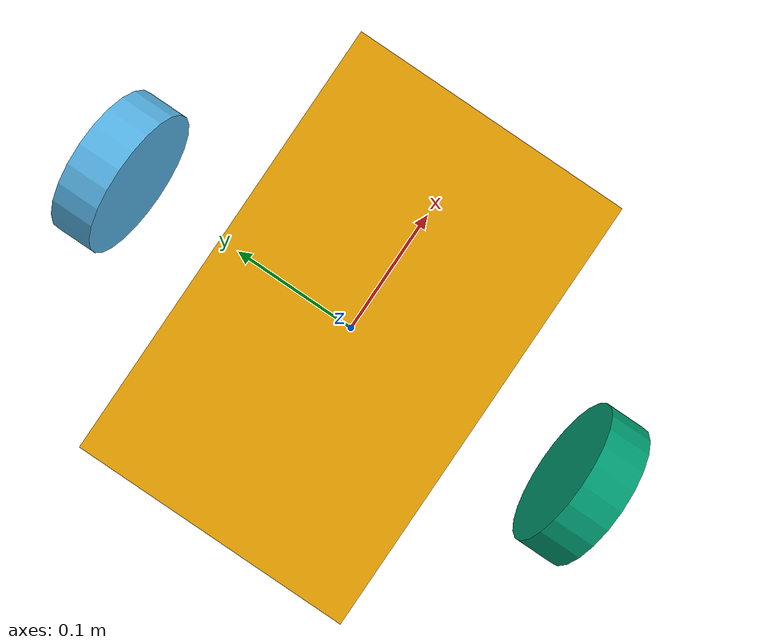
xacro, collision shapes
<?xml version="1.0"?>
<robot xmlns:xacro="http://www.ros.org/wiki/xacro" name="balance">
  <xacro:arg name="load_chassis" default="true"/>
  <xacro:arg name="load_gimbal" default="true"/>
  <xacro:arg name="load_shooter" default="true"/>
  <xacro:arg name="use_simulation" default="true"/>
  <xacro:arg name="use_rm_gazebo" default="false"/>

  <xacro:if value="$(arg load_chassis)">
    <xacro:include filename="$(find rm_description)/urdf/balance/chassis.urdf.xacro"/>
    <xacro:chassis/>
  </xacro:if>

  <xacro:if value="$(arg load_gimbal)">
  </xacro:if>

  <xacro:if value="$(arg load_shooter)">
  </xacro:if>

  <xacro:if value="$(arg use_simulation)">
    <xacro:if value="$(arg use_rm_gazebo)">
      <gazebo>
        <plugin name="rm_ros_control" filename="librm_robot_hw_sim.so">
          <robotNamespace>/</robotNamespace>
          <robotSimType>rm_gazebo/RmRobotHWSim</robotSimType>
        </plugin>
      </gazebo>
    </xacro:if>
    <xacro:unless value="$(arg use_rm_gazebo)">
      <gazebo>
        <plugin name="gazebo_ros_control" filename="libgazebo_ros_control.so">
          <robotNamespace>/</robotNamespace>
        </plugin>
      </gazebo>
    </xacro:unless>
    <xacro:if value="$(arg load_chassis)">
      <gazebo reference="base_link">
        <gravity>true</gravity>
        <sensor name="imu_sensor" type="imu">
          <always_on>true</always_on>
          <update_rate>100</update_rate>
          <visualize>true</visualize>
          <topic>__default_topic__</topic>
          <plugin filename="libgazebo_ros_imu_sensor.so" name="imu_plugin">
            <topicName>imu</topicName>
            <bodyName>imu_link</bodyName>
            <updateRateHZ>100.0</updateRateHZ>
            <gaussianNoise>0.0</gaussianNoise>
            <xyzOffset>0 0 0</xyzOffset>
            <rpyOffset>0 0 0</rpyOffset>
            <frameName>imu_link</frameName>
            <initialOrientationAsReference>false</initialOrientationAsReference>
          </plugin>
          <pose>0 0 0 0 0 0</pose>
        </sensor>
      </gazebo>
    </xacro:if>
  </xacro:if>

</robot>

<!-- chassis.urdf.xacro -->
<robot xmlns:xacro="http://www.ros.org/wiki/xacro">

    <xacro:include filename="$(find rm_description)/urdf/balance/rubber_wheel.urdf.xacro"/>

    <!-- https://upload.wikimedia.org/wikipedia/commons/5/52/Wheelbase_and_Track.png -->
    <xacro:property name="wheel_base" value="0.405"/>
    <xacro:property name="wheel_z_offset" value="0"/>

    <xacro:macro name="chassis">

        <link name="base_link">
            <inertial>
                <mass value="4.595"/>
                <origin xyz="-0.000190 -0.000075 0.110987"/>
                <inertia ixx="0.126" ixy="-1.806e-6" ixz="1.142e-4" iyy="5.337e-2"
                         iyz="1.133e-4" izz="8.685e-2"/>
            </inertial>
            <visual>
                <origin xyz="0 0 0.085" rpy="0 0 0"/>
                <geometry>
                    <mesh filename="package://rm_description/meshes/balance/base.stl" scale="0.001 0.001 0.001"/>
                </geometry>
            </visual>
            <collision>
                <origin xyz="0 0 0.018" rpy="0 0 0"/>
                <geometry>
                    <box size="0.35 0.22 0.03"/>
                </geometry>
            </collision>
        </link>

        <xacro:rubber_wheel prefix="left" connected_to="base_link"
                            wheel_x_offset="0" wheel_y_offset="${wheel_base/2}"
                            wheel_z_offset="${wheel_z_offset}" mechanical_reduction="-0.166"/>
        <xacro:rubber_wheel prefix="right" connected_to="base_link"
                            wheel_x_offset="0" wheel_y_offset="${-wheel_base/2}"
                            wheel_z_offset="${wheel_z_offset}" mechanical_reduction="0.166"/>

    </xacro:macro>

</robot>

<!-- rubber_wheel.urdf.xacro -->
<robot xmlns:xacro="http://www.ros.org/wiki/xacro">

    <xacro:property name="wheel_radius" value="0.06"/>
    <xacro:property name="wheel_width" value="0.032"/>
    <xacro:property name="wheel_joint_effort" value="1.0"/>
    <xacro:property name="wheel_joint_velocity" value="50"/>

    <xacro:macro name="rubber_wheel"
                 params="prefix connected_to wheel_x_offset wheel_y_offset wheel_z_offset mechanical_reduction">
        <!--  link  -->
        <link name="${prefix}_wheel">
            <visual>
                <geometry>
                    <xacro:if value="${prefix=='left'}">
                        <mesh filename="package://rm_description/meshes/balance/left_rubber_wheel.stl"
                              scale="0.001 0.001 0.001"/>
                    </xacro:if>
                    <xacro:if value="${prefix=='right'}">
                        <mesh filename="package://rm_description/meshes/balance/right_rubber_wheel.stl"
                              scale="0.001 0.001 0.001"/>
                    </xacro:if>
                </geometry>
            </visual>
            <collision>
                <origin rpy="1.57 0 0" xyz="0 0 0"/>
                <geometry>
                    <cylinder length="0.032" radius="0.06"/>
                </geometry>
            </collision>
            <inertial>
                <mass value="0.23"/>
                <xacro:if value="${prefix=='left'}">
                    <origin xyz="0 0.00419 0"/>
                </xacro:if>
                <xacro:if value="${prefix=='right'}">
                    <origin xyz="0 -0.00419 0"/>
                </xacro:if>
                <inertia ixx="3.048e-4" ixy="0.0" ixz="0.0" iyy="5.647e-4" iyz="0.0" izz="3.048e-4"/>
            </inertial>
        </link>

        <!--  joint  -->
        <joint name="${prefix}_wheel_joint" type="revolute">
            <axis xyz="0 1 0"/>
            <origin xyz="${wheel_x_offset} ${wheel_y_offset} ${wheel_z_offset}" rpy="0 0 0"/>
            <!--      limit not work while type="continuous"-->
            <limit effort="${wheel_joint_effort}" velocity="${wheel_joint_velocity}" lower="-1e16" upper="1e16"/>
            <dynamics damping="0.0" friction="0.05"/>
            <parent link="${connected_to}"/>
            <child link="${prefix}_wheel"/>
        </joint>

        <!-- transmission -->
        <transmission name="${prefix}_wheel_trans">
            <type>transmission_interface/SimpleTransmission</type>
            <actuator name="${prefix}_wheel_actuator">
                <mechanicalReduction>${mechanical_reduction}</mechanicalReduction>
            </actuator>
            <joint name="${prefix}_wheel_joint">
                <hardwareInterface>hardware_interface/EffortJointInterface</hardwareInterface>
            </joint>
        </transmission>

    </xacro:macro>

</robot>
